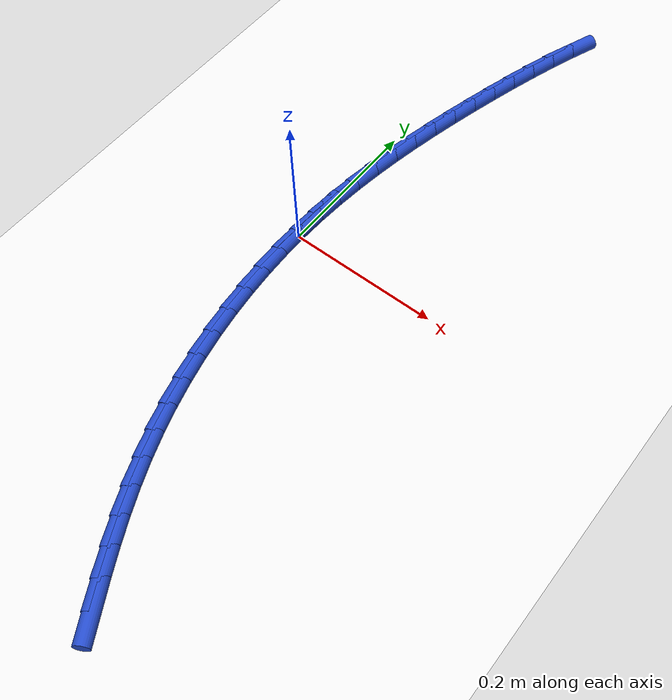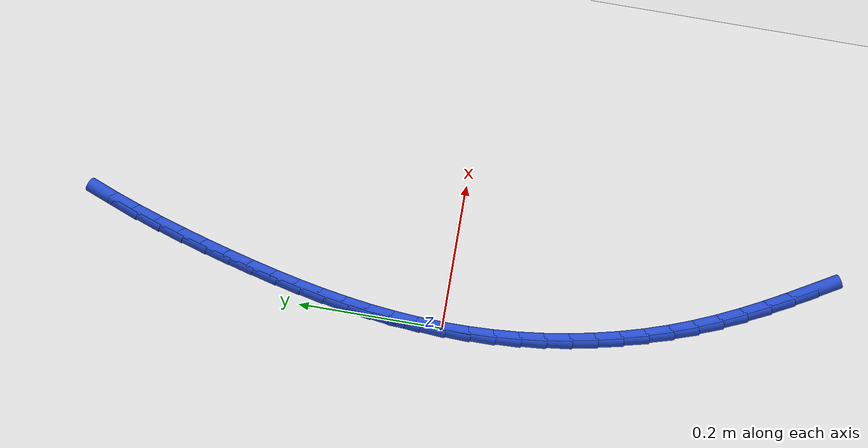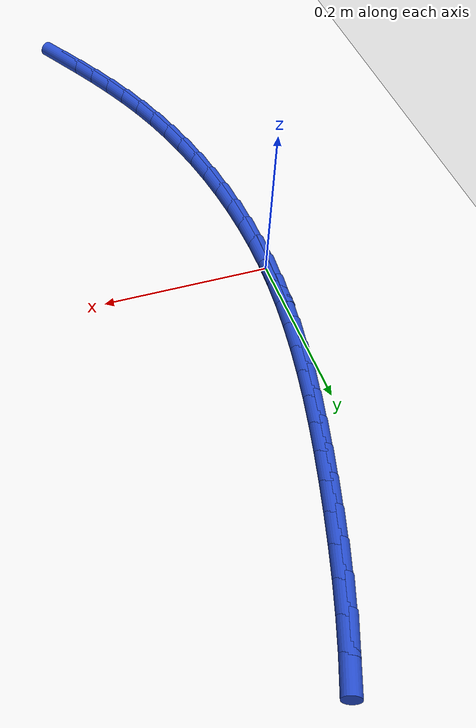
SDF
<sdf version="1.6">
 <world name="default">
  <model name="ground_plane">
   <static>1</static>
   <link name="link">
    <collision name="collision">
     <geometry><plane><normal>0 0 1</normal><size>100 100</size></plane></geometry>
     <surface><friction><ode><mu>100</mu><mu2>50</mu2></ode></friction></surface>
    </collision>
    <visual name="visual">
     <cast_shadows>0</cast_shadows>
     <geometry><plane><normal>0 0 1</normal><size>100 100</size></plane></geometry>
     <material>
      <script><uri>file://media/materials/scripts/gazebo.material</uri><name>Gazebo/WhiteGlow</name></script>
     </material>
    </visual>
   </link>
  </model>
  <model name="line">
   <link name="link_0">
    <pose>2.42861286636753e-17 6.938893903907228e-17 0.01 0 1.57 1.5319976299975253</pose>
    <collision name="collision">
     <geometry><cylinder><radius>0.01</radius><length>0.08</length></cylinder></geometry>
    </collision>
    <visual name="visual">
     <material>
      <script><name>Gazebo/Blue</name><uri>file://media/materials/scripts/gazebo.material</uri></script>
     </material>
     <geometry><cylinder><radius>0.01</radius><length>0.08</length></cylinder></geometry>
    </visual>
   </link>
   <link name="link_1">
    <pose>0.0013332961013255368 0.03434721068902115 0.01 0 1.57 1.4957347589479104</pose>
    <collision name="collision">
     <geometry><cylinder><radius>0.01</radius><length>0.08</length></cylinder></geometry>
    </collision>
    <visual name="visual">
     <material>
      <script><name>Gazebo/Blue</name><uri>file://media/materials/scripts/gazebo.material</uri></script>
     </material>
     <geometry><cylinder><radius>0.01</radius><length>0.08</length></cylinder></geometry>
    </visual>
   </link>
   <link name="link_2">
    <pose>0.0039034494445479833 0.06852348291519832 0.01 0 1.57 1.4620143395211584</pose>
    <collision name="collision">
     <geometry><cylinder><radius>0.01</radius><length>0.08</length></cylinder></geometry>
    </collision>
    <visual name="visual">
     <material>
      <script><name>Gazebo/Blue</name><uri>file://media/materials/scripts/gazebo.material</uri></script>
     </material>
     <geometry><cylinder><radius>0.01</radius><length>0.08</length></cylinder></geometry>
    </visual>
   </link>
   <link name="link_3">
    <pose>0.0076203454995357155 0.10255690376160631 0.01 0 1.57 1.430980104530784</pose>
    <collision name="collision">
     <geometry><cylinder><radius>0.01</radius><length>0.08</length></cylinder></geometry>
    </collision>
    <visual name="visual">
     <material>
      <script><name>Gazebo/Blue</name><uri>file://media/materials/scripts/gazebo.material</uri></script>
     </material>
     <geometry><cylinder><radius>0.01</radius><length>0.08</length></cylinder></geometry>
    </visual>
   </link>
   <link name="link_4">
    <pose>0.012393869736157099 0.13647556031132002 0.01 0 1.57 1.4027336423190897</pose>
    <collision name="collision">
     <geometry><cylinder><radius>0.01</radius><length>0.08</length></cylinder></geometry>
    </collision>
    <visual name="visual">
     <material>
      <script><name>Gazebo/Blue</name><uri>file://media/materials/scripts/gazebo.material</uri></script>
     </material>
     <geometry><cylinder><radius>0.01</radius><length>0.08</length></cylinder></geometry>
    </visual>
   </link>
   <link name="link_5">
    <pose>0.01813390762428047 0.17030753964741416 0.01 0 1.57 1.3773396047515634</pose>
    <collision name="collision">
     <geometry><cylinder><radius>0.01</radius><length>0.08</length></cylinder></geometry>
    </collision>
    <visual name="visual">
     <material>
      <script><name>Gazebo/Blue</name><uri>file://media/materials/scripts/gazebo.material</uri></script>
     </material>
     <geometry><cylinder><radius>0.01</radius><length>0.08</length></cylinder></geometry>
    </visual>
   </link>
   <link name="link_6">
    <pose>0.024750344633774186 0.2040809288529636 0.01 0 1.57 1.35483161645047</pose>
    <collision name="collision">
     <geometry><cylinder><radius>0.01</radius><length>0.08</length></cylinder></geometry>
    </collision>
    <visual name="visual">
     <material>
      <script><name>Gazebo/Blue</name><uri>file://media/materials/scripts/gazebo.material</uri></script>
     </material>
     <geometry><cylinder><radius>0.01</radius><length>0.08</length></cylinder></geometry>
    </visual>
   </link>
   <link name="link_7">
    <pose>0.0321530662345066 0.23782381501104302 0.01 0 1.57 1.335218311419584</pose>
    <collision name="collision">
     <geometry><cylinder><radius>0.01</radius><length>0.08</length></cylinder></geometry>
    </collision>
    <visual name="visual">
     <material>
      <script><name>Gazebo/Blue</name><uri>file://media/materials/scripts/gazebo.material</uri></script>
     </material>
     <geometry><cylinder><radius>0.01</radius><length>0.08</length></cylinder></geometry>
    </visual>
   </link>
   <link name="link_8">
    <pose>0.04025195789634607 0.27156428520472736 0.01 0 1.57 1.3184890682118677</pose>
    <collision name="collision">
     <geometry><cylinder><radius>0.01</radius><length>0.08</length></cylinder></geometry>
    </collision>
    <visual name="visual">
     <material>
      <script><name>Gazebo/Blue</name><uri>file://media/materials/scripts/gazebo.material</uri></script>
     </material>
     <geometry><cylinder><radius>0.01</radius><length>0.08</length></cylinder></geometry>
    </visual>
   </link>
   <link name="link_9">
    <pose>0.048956905089160965 0.30533042651709136 0.01 0 1.57 1.3045395421984778</pose>
    <collision name="collision">
     <geometry><cylinder><radius>0.01</radius><length>0.08</length></cylinder></geometry>
    </collision>
    <visual name="visual">
     <material>
      <script><name>Gazebo/Blue</name><uri>file://media/materials/scripts/gazebo.material</uri></script>
     </material>
     <geometry><cylinder><radius>0.01</radius><length>0.08</length></cylinder></geometry>
    </visual>
   </link>
   <link name="link_10">
    <pose>0.05818016048302324 0.3391483987600942 0.01 0 1.57 1.2906812266916168</pose>
    <collision name="collision">
     <geometry><cylinder><radius>0.01</radius><length>0.08</length></cylinder></geometry>
    </collision>
    <visual name="visual">
     <material>
      <script><name>Gazebo/Blue</name><uri>file://media/materials/scripts/gazebo.material</uri></script>
     </material>
     <geometry><cylinder><radius>0.01</radius><length>0.08</length></cylinder></geometry>
    </visual>
   </link>
   <link name="link_11">
    <pose>0.06791284358544548 0.3729801518079231 0.01 0 1.57 1.2736450107143469</pose>
    <collision name="collision">
     <geometry><cylinder><radius>0.01</radius><length>0.08</length></cylinder></geometry>
    </collision>
    <visual name="visual">
     <material>
      <script><name>Gazebo/Blue</name><uri>file://media/materials/scripts/gazebo.material</uri></script>
     </material>
     <geometry><cylinder><radius>0.01</radius><length>0.08</length></cylinder></geometry>
    </visual>
   </link>
   <link name="link_12">
    <pose>0.07824150280431098 0.406709941488023 0.01 0 1.57 1.2531404889853364</pose>
    <collision name="collision">
     <geometry><cylinder><radius>0.01</radius><length>0.08</length></cylinder></geometry>
    </collision>
    <visual name="visual">
     <material>
      <script><name>Gazebo/Blue</name><uri>file://media/materials/scripts/gazebo.material</uri></script>
     </material>
     <geometry><cylinder><radius>0.01</radius><length>0.08</length></cylinder></geometry>
    </visual>
   </link>
   <link name="link_13">
    <pose>0.08925840393630295 0.44021736877935064 0.01 0 1.57 1.2290328772874268</pose>
    <collision name="collision">
     <geometry><cylinder><radius>0.01</radius><length>0.08</length></cylinder></geometry>
    </collision>
    <visual name="visual">
     <material>
      <script><name>Gazebo/Blue</name><uri>file://media/materials/scripts/gazebo.material</uri></script>
     </material>
     <geometry><cylinder><radius>0.01</radius><length>0.08</length></cylinder></geometry>
    </visual>
   </link>
   <link name="link_14">
    <pose>0.10105581277810456 0.4733820346608624 0.01 0 1.57 1.201155934864987</pose>
    <collision name="collision">
     <geometry><cylinder><radius>0.01</radius><length>0.08</length></cylinder></geometry>
    </collision>
    <visual name="visual">
     <material>
      <script><name>Gazebo/Blue</name><uri>file://media/materials/scripts/gazebo.material</uri></script>
     </material>
     <geometry><cylinder><radius>0.01</radius><length>0.08</length></cylinder></geometry>
    </visual>
   </link>
   <link name="link_175">
    <pose>0.13535270314590503 -0.4903678108019547 0.01 0 1.57 -1.0532898077235107</pose>
    <collision name="collision">
     <geometry><cylinder><radius>0.01</radius><length>0.08</length></cylinder></geometry>
    </collision>
    <visual name="visual">
     <material>
      <script><name>Gazebo/Blue</name><uri>file://media/materials/scripts/gazebo.material</uri></script>
     </material>
     <geometry><cylinder><radius>0.01</radius><length>0.08</length></cylinder></geometry>
    </visual>
   </link>
   <link name="link_176">
    <pose>0.11840255165222224 -0.4605918181957698 0.01 0 1.57 -1.075484240741532</pose>
    <collision name="collision">
     <geometry><cylinder><radius>0.01</radius><length>0.08</length></cylinder></geometry>
    </collision>
    <visual name="visual">
     <material>
      <script><name>Gazebo/Blue</name><uri>file://media/materials/scripts/gazebo.material</uri></script>
     </material>
     <geometry><cylinder><radius>0.01</radius><length>0.08</length></cylinder></geometry>
    </visual>
   </link>
   <link name="link_177">
    <pose>0.10220622910649689 -0.43061145265072553 0.01 0 1.57 -1.1028634347998068</pose>
    <collision name="collision">
     <geometry><cylinder><radius>0.01</radius><length>0.08</length></cylinder></geometry>
    </collision>
    <visual name="visual">
     <material>
      <script><name>Gazebo/Blue</name><uri>file://media/materials/scripts/gazebo.material</uri></script>
     </material>
     <geometry><cylinder><radius>0.01</radius><length>0.08</length></cylinder></geometry>
    </visual>
   </link>
   <link name="link_178">
    <pose>0.08689224907200079 -0.4003088299389905 0.01 0 1.57 -1.1353317033806776</pose>
    <collision name="collision">
     <geometry><cylinder><radius>0.01</radius><length>0.08</length></cylinder></geometry>
    </collision>
    <visual name="visual">
     <material>
      <script><name>Gazebo/Blue</name><uri>file://media/materials/scripts/gazebo.material</uri></script>
     </material>
     <geometry><cylinder><radius>0.01</radius><length>0.08</length></cylinder></geometry>
    </visual>
   </link>
   <link name="link_179">
    <pose>0.07258912511200617 -0.36956606583273394 0.01 0 1.57 -1.1726952741824348</pose>
    <collision name="collision">
     <geometry><cylinder><radius>0.01</radius><length>0.08</length></cylinder></geometry>
    </collision>
    <visual name="visual">
     <material>
      <script><name>Gazebo/Blue</name><uri>file://media/materials/scripts/gazebo.material</uri></script>
     </material>
     <geometry><cylinder><radius>0.01</radius><length>0.08</length></cylinder></geometry>
    </visual>
   </link>
   <link name="link_180">
    <pose>0.05942537078978431 -0.3382652761041233 0.01 0 1.57 -1.2144645278880093</pose>
    <collision name="collision">
     <geometry><cylinder><radius>0.01</radius><length>0.08</length></cylinder></geometry>
    </collision>
    <visual name="visual">
     <material>
      <script><name>Gazebo/Blue</name><uri>file://media/materials/scripts/gazebo.material</uri></script>
     </material>
     <geometry><cylinder><radius>0.01</radius><length>0.08</length></cylinder></geometry>
    </visual>
   </link>
   <link name="link_181">
    <pose>0.047525484713700494 -0.30629530206222544 0.01 0 1.57 -1.2573637677798823</pose>
    <collision name="collision">
     <geometry><cylinder><radius>0.01</radius><length>0.08</length></cylinder></geometry>
    </collision>
    <visual name="visual">
     <material>
      <script><name>Gazebo/Blue</name><uri>file://media/materials/scripts/gazebo.material</uri></script>
     </material>
     <geometry><cylinder><radius>0.01</radius><length>0.08</length></cylinder></geometry>
    </visual>
   </link>
   <link name="link_182">
    <pose>0.03694695190510967 -0.2736572409100104 0.01 0 1.57 -1.2990266039772302</pose>
    <collision name="collision">
     <geometry><cylinder><radius>0.01</radius><length>0.08</length></cylinder></geometry>
    </collision>
    <visual name="visual">
     <material>
      <script><name>Gazebo/Blue</name><uri>file://media/materials/scripts/gazebo.material</uri></script>
     </material>
     <geometry><cylinder><radius>0.01</radius><length>0.08</length></cylinder></geometry>
    </visual>
   </link>
   <link name="link_183">
    <pose>0.027691874271315566 -0.24044496329017023 0.01 0 1.57 -1.3395886053227422</pose>
    <collision name="collision">
     <geometry><cylinder><radius>0.01</radius><length>0.08</length></cylinder></geometry>
    </collision>
    <visual name="visual">
     <material>
      <script><name>Gazebo/Blue</name><uri>file://media/materials/scripts/gazebo.material</uri></script>
     </material>
     <geometry><cylinder><radius>0.01</radius><length>0.08</length></cylinder></geometry>
    </visual>
   </link>
   <link name="link_184">
    <pose>0.019760691386972194 -0.20675512445439823 0.01 0 1.57 -1.3792579481851701</pose>
    <collision name="collision">
     <geometry><cylinder><radius>0.01</radius><length>0.08</length></cylinder></geometry>
    </collision>
    <visual name="visual">
     <material>
      <script><name>Gazebo/Blue</name><uri>file://media/materials/scripts/gazebo.material</uri></script>
     </material>
     <geometry><cylinder><radius>0.01</radius><length>0.08</length></cylinder></geometry>
    </visual>
   </link>
   <link name="link_185">
    <pose>0.013153842826733517 -0.1726843796543871 0.01 0 1.57 -1.418241098122466</pose>
    <collision name="collision">
     <geometry><cylinder><radius>0.01</radius><length>0.08</length></cylinder></geometry>
    </collision>
    <visual name="visual">
     <material>
      <script><name>Gazebo/Blue</name><uri>file://media/materials/scripts/gazebo.material</uri></script>
     </material>
     <geometry><cylinder><radius>0.01</radius><length>0.08</length></cylinder></geometry>
    </visual>
   </link>
   <link name="link_186">
    <pose>0.007871768165253626 -0.13832938414183055 0.01 0 1.57 -1.4567432378840874</pose>
    <collision name="collision">
     <geometry><cylinder><radius>0.01</radius><length>0.08</length></cylinder></geometry>
    </collision>
    <visual name="visual">
     <material>
      <script><name>Gazebo/Blue</name><uri>file://media/materials/scripts/gazebo.material</uri></script>
     </material>
     <geometry><cylinder><radius>0.01</radius><length>0.08</length></cylinder></geometry>
    </visual>
   </link>
   <link name="link_187">
    <pose>0.003914906977186276 -0.10378679316842021 0.01 0 1.57 -1.494969139219695</pose>
    <collision name="collision">
     <geometry><cylinder><radius>0.01</radius><length>0.08</length></cylinder></geometry>
    </collision>
    <visual name="visual">
     <material>
      <script><name>Gazebo/Blue</name><uri>file://media/materials/scripts/gazebo.material</uri></script>
     </material>
     <geometry><cylinder><radius>0.01</radius><length>0.08</length></cylinder></geometry>
    </visual>
   </link>
   <link name="link_188">
    <pose>0.0012836988371855698 -0.06915326198584967 0.01 0 1.57 -1.5331243564693446</pose>
    <collision name="collision">
     <geometry><cylinder><radius>0.01</radius><length>0.08</length></cylinder></geometry>
    </collision>
    <visual name="visual">
     <material>
      <script><name>Gazebo/Blue</name><uri>file://media/materials/scripts/gazebo.material</uri></script>
     </material>
     <geometry><cylinder><radius>0.01</radius><length>0.08</length></cylinder></geometry>
    </visual>
   </link>
   <link name="link_189">
    <pose>-2.141668009450655e-05 -0.03452544584581196 0.01 0 1.57 1.5701760110589844</pose>
    <collision name="collision">
     <geometry><cylinder><radius>0.01</radius><length>0.08</length></cylinder></geometry>
    </collision>
    <visual name="visual">
     <material>
      <script><name>Gazebo/Blue</name><uri>file://media/materials/scripts/gazebo.material</uri></script>
     </material>
     <geometry><cylinder><radius>0.01</radius><length>0.08</length></cylinder></geometry>
    </visual>
   </link>
   <link name="link_190">
    <pose>2.0816681711721685e-17 0.0 0.01 0 1.57 1.5315351527699457</pose>
    <collision name="collision">
     <geometry><cylinder><radius>0.01</radius><length>0.08</length></cylinder></geometry>
    </collision>
    <visual name="visual">
     <material>
      <script><name>Gazebo/Blue</name><uri>file://media/materials/scripts/gazebo.material</uri></script>
     </material>
     <geometry><cylinder><radius>0.01</radius><length>0.08</length></cylinder></geometry>
    </visual>
   </link>
   <link name="link_191">
    <pose>0.0013483884521231435 0.03432642029989323 0.01 0 1.57 1.5315351527699457</pose>
    <collision name="collision">
     <geometry><cylinder><radius>0.01</radius><length>0.08</length></cylinder></geometry>
    </collision>
    <visual name="visual">
     <material>
      <script><name>Gazebo/Blue</name><uri>file://media/materials/scripts/gazebo.material</uri></script>
     </material>
     <geometry><cylinder><radius>0.01</radius><length>0.08</length></cylinder></geometry>
    </visual>
   </link>
  </model>
 </world>
</sdf>
